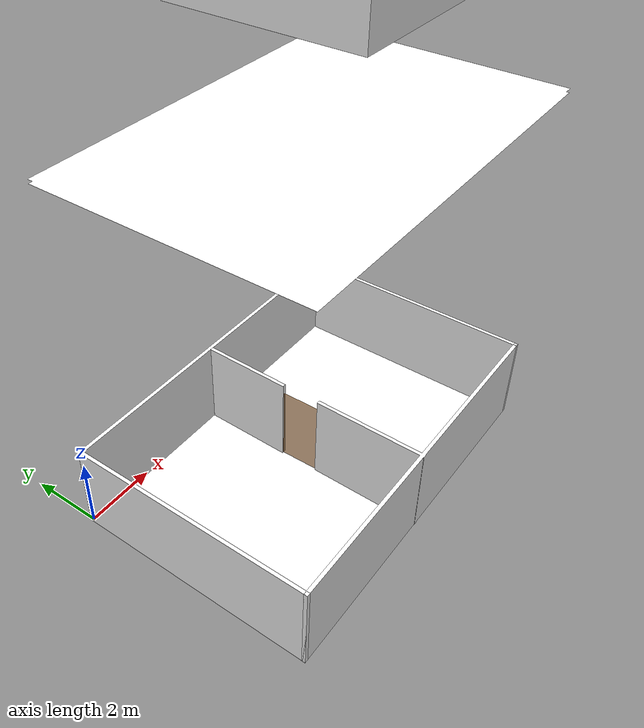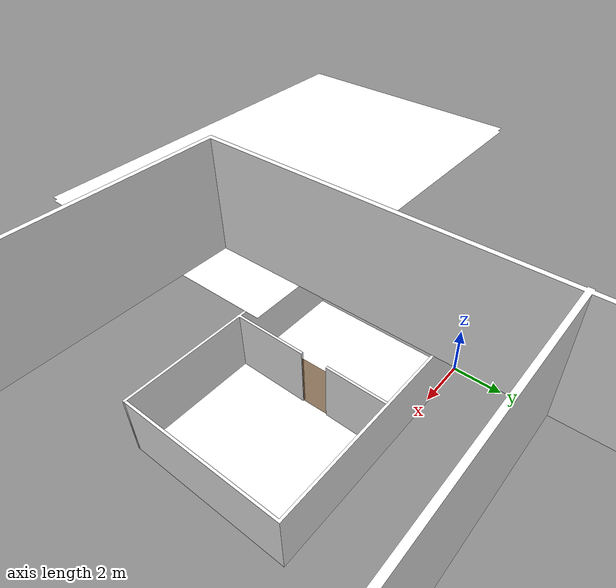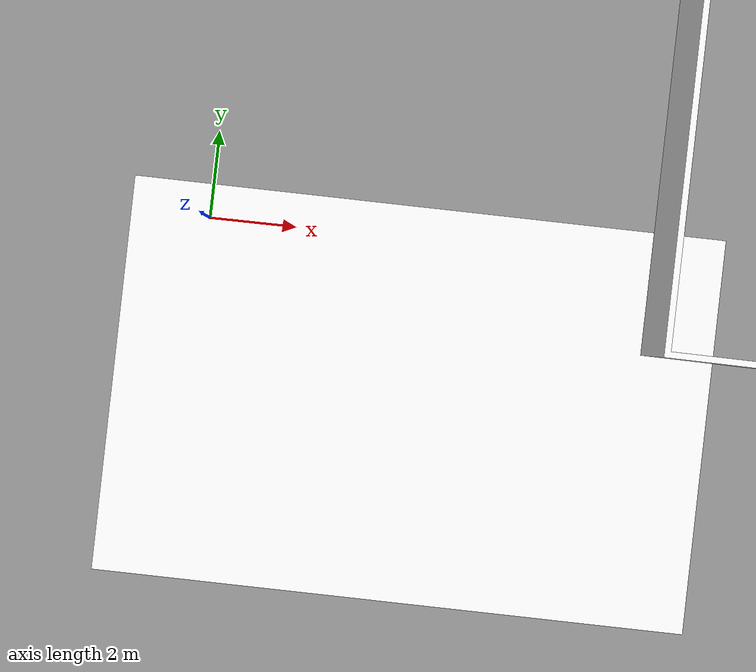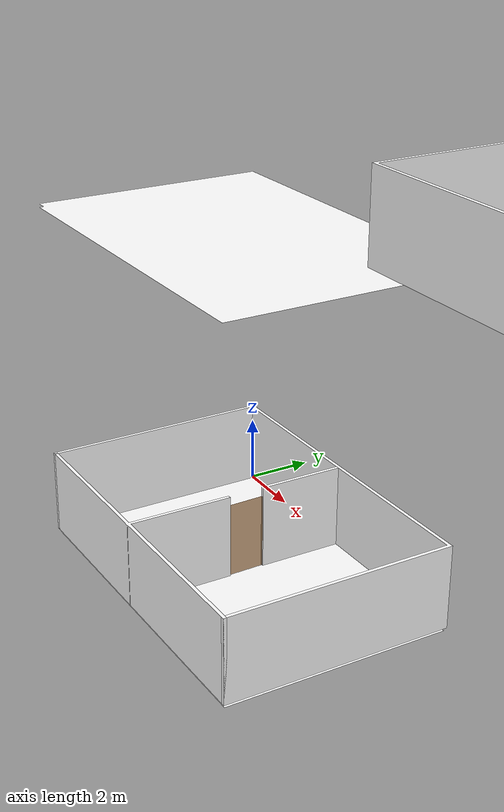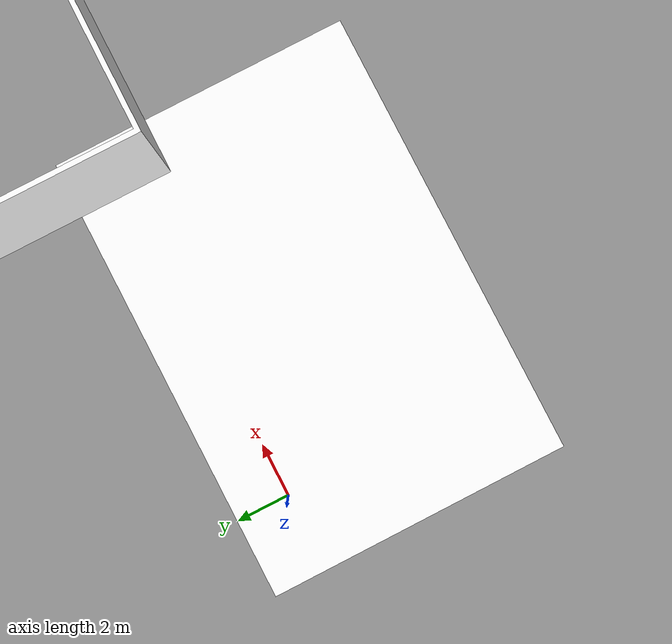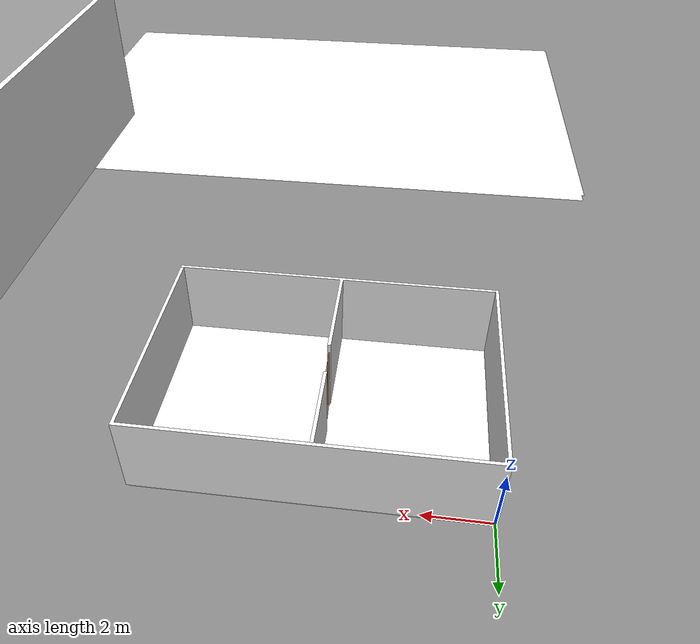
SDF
<sdf version="1.7">
 <world name="sim_world">
  <physics name="10ms" type="ode">
   <max_step_size>0.01</max_step_size>
   <real_time_factor>1.0</real_time_factor>
  </physics>
  <plugin filename="gz-sim-physics-system" name="gz::sim::systems::Physics"/>
  <plugin filename="gz-sim-user-commands-system" name="gz::sim::systems::UserCommands"/>
  <plugin filename="gz-sim-scene-broadcaster-system" name="gz::sim::systems::SceneBroadcaster"/>
  <plugin filename="libdoor.so" name="door"/>
  <plugin filename="liblift.so" name="lift"/>
  <scene><ambient>1 1 1</ambient><background>0.8 0.8 0.8</background><grid>false</grid></scene>
  <light type="directional" name="sun">
   <pose>0 0 10 0 0 0</pose>
   <diffuse>1 1 1 1</diffuse>
   <specular>0.2 0.2 0.2 1</specular>
   <attenuation>
    <range>1000</range>
    <constant>0.09</constant>
    <linear>0.001</linear>
    <quadratic>0.001</quadratic>
   </attenuation>
   <direction>-0.5 0.1 -0.9</direction>
  </light>
  <model name="null">
   <pose>4.847733333333333 -3.0652 0.0 0 0 1.5896922564070775</pose>
   <link name="right">
    <pose>0 0 1.11 0 0 0</pose>
    <visual name="right_visual">
     <geometry><box><size>1.154341194743954 0.03 2.2</size></box></geometry>
     <material>
      <ambient>0.5 0.25 0 0.6</ambient>
      <diffuse>0.5 0.25 0 0.6</diffuse>
      <pbr><metal><metalness>0.0</metalness></metal></pbr>
     </material>
    </visual>
    <collision name="right_collision">
     <geometry><box><size>1.154341194743954 0.03 2.2</size></box></geometry>
     <surface><contact><collide_bitmask>0x02</collide_bitmask></contact></surface>
    </collision>
    <inertial>
     <mass>50.0</mass>
     <inertia><ixx>20.17041666666667</ixx><iyy>25.71876497451208</iyy><izz>5.5558483078454115</izz></inertia>
    </inertial>
   </link>
   <joint name="right_joint" type="revolute">
    <parent>world</parent>
    <child>right</child>
    <axis><xyz>0 0 -1</xyz><limit><lower>0</lower><upper>1.57</upper></limit></axis>
    <pose>0.582170597371977 0 0 0 0 0</pose>
   </joint>
   <plugin name="register_component" filename="libregister_component.so">
    <component name="Door">
     <v_max_door>0.5</v_max_door>
     <a_max_door>0.3</a_max_door>
     <a_nom_door>0.15</a_nom_door>
     <dx_min_door>0.01</dx_min_door>
     <f_max_door>500.0</f_max_door>
     <ros_interface>true</ros_interface>
     <door name="null" type="SwingDoor" left_joint_name="empty_joint" right_joint_name="right_joint"/>
    </component>
   </plugin>
  </model>
  <include><name>first_L1</name><uri>model://first_L1</uri></include>
  <include><name>first_L2</name><uri>model://first_L2</uri><pose>0 0 10.0 0 0 0</pose></include>
  <plugin name="register_component" filename="libregister_component.so">
   <component name="Chargers">
    <rmf_charger name="tinyRobot1_charger" x="3.3333333333333335" y="-3.3333333333333335" z="0.0"/>
   </component>
  </plugin>
 </world>
</sdf>

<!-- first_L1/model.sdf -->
<sdf version="1.7">
  <model name="first_L1">
    <static>true</static>
    <link name="floor_1">
      <visual name="visual">
        <geometry>
          <mesh>
            <uri>model://first_L1/meshes/floor_1.obj</uri>
          </mesh>
        </geometry>
        <material>
          <diffuse>1.0 1.0 1.0</diffuse>
          <specular>0.1 0.1 0.1</specular>
          <pbr>
            <metal>
              <metalness>0.0</metalness>
              <albedo_map>model://first_L1/meshes/blue_linoleum.png</albedo_map>
            </metal>
          </pbr>
          <script>
            <uri>model://first_L1/meshes/</uri>
            <name>floor_1_Diffuse</name>
          </script>
        </material>
      </visual>
      <collision name="collision">
        <geometry>
          <mesh>
            <uri>model://first_L1/meshes/floor_1.obj</uri>
          </mesh>
        </geometry>
        <surface>
          <contact>
            <collide_bitmask>0x01</collide_bitmask>
          </contact>
        </surface>
      </collision>
    </link>
    <link name="wall_1">
      <visual name="wall_1">
        <geometry>
          <mesh>
            <uri>model://first_L1/meshes/wall_1.obj</uri>
          </mesh>
        </geometry>
        <transparency>0.0</transparency>
        <material>
          <diffuse>1.0 1.0 1.0</diffuse>
          <specular>0.1 0.1 0.1</specular>
          <pbr>
            <metal>
              <metalness>0.0</metalness>
              <albedo_map>model://first_L1/meshes/default.png</albedo_map>
            </metal>
          </pbr>
          <script>
            <uri>model://first_L1/meshes/</uri>
            <name>wall_1_Diffuse</name>
          </script>
        </material>
      </visual>
      <collision name="collision">
        <geometry>
          <mesh>
            <uri>model://first_L1/meshes/wall_1.obj</uri>
          </mesh>
        </geometry>
        <surface>
          <contact>
            <collide_bitmask>0x01</collide_bitmask>
          </contact>
        </surface>
      </collision>
      <pose>-0.05000000000000021 -6.716666666666667 0 0 0 0</pose>
    </link>
    <link name="wall_2">
      <visual name="wall_2">
        <geometry>
          <mesh>
            <uri>model://first_L1/meshes/wall_2.obj</uri>
          </mesh>
        </geometry>
        <transparency>0.0</transparency>
        <material>
          <diffuse>1.0 1.0 1.0</diffuse>
          <specular>0.1 0.1 0.1</specular>
          <pbr>
            <metal>
              <metalness>0.0</metalness>
              <albedo_map>model://first_L1/meshes/default.png</albedo_map>
            </metal>
          </pbr>
          <script>
            <uri>model://first_L1/meshes/</uri>
            <name>wall_2_Diffuse</name>
          </script>
        </material>
      </visual>
      <collision name="collision">
        <geometry>
          <mesh>
            <uri>model://first_L1/meshes/wall_2.obj</uri>
          </mesh>
        </geometry>
        <surface>
          <contact>
            <collide_bitmask>0x01</collide_bitmask>
          </contact>
        </surface>
      </collision>
      <pose>-0.04999999999999982 -6.728828232834652 0 0 0 0</pose>
    </link>
  </model>
</sdf>

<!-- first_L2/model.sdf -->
<sdf version="1.7">
  <model name="first_L2">
    <static>true</static>
    <link name="floor_1">
      <visual name="visual">
        <geometry>
          <mesh>
            <uri>model://first_L2/meshes/floor_1.obj</uri>
          </mesh>
        </geometry>
        <material>
          <diffuse>1.0 1.0 1.0</diffuse>
          <specular>0.1 0.1 0.1</specular>
          <pbr>
            <metal>
              <metalness>0.0</metalness>
              <albedo_map>model://first_L2/meshes/blue_linoleum.png</albedo_map>
            </metal>
          </pbr>
          <script>
            <uri>model://first_L2/meshes/</uri>
            <name>floor_1_Diffuse</name>
          </script>
        </material>
      </visual>
      <collision name="collision">
        <geometry>
          <mesh>
            <uri>model://first_L2/meshes/floor_1.obj</uri>
          </mesh>
        </geometry>
        <surface>
          <contact>
            <collide_bitmask>0x01</collide_bitmask>
          </contact>
        </surface>
      </collision>
    </link>
    <link name="wall_1">
      <visual name="wall_1">
        <geometry>
          <mesh>
            <uri>model://first_L2/meshes/wall_1.obj</uri>
          </mesh>
        </geometry>
        <transparency>0.0</transparency>
        <material>
          <diffuse>1.0 1.0 1.0</diffuse>
          <specular>0.1 0.1 0.1</specular>
          <pbr>
            <metal>
              <metalness>0.0</metalness>
              <albedo_map>model://first_L2/meshes/default.png</albedo_map>
            </metal>
          </pbr>
          <script>
            <uri>model://first_L2/meshes/</uri>
            <name>wall_1_Diffuse</name>
          </script>
        </material>
      </visual>
      <collision name="collision">
        <geometry>
          <mesh>
            <uri>model://first_L2/meshes/wall_1.obj</uri>
          </mesh>
        </geometry>
        <surface>
          <contact>
            <collide_bitmask>0x01</collide_bitmask>
          </contact>
        </surface>
      </collision>
      <pose>-0.07546163508150006 -6.744658149300338 0 0 0 0</pose>
    </link>
  </model>
</sdf>
